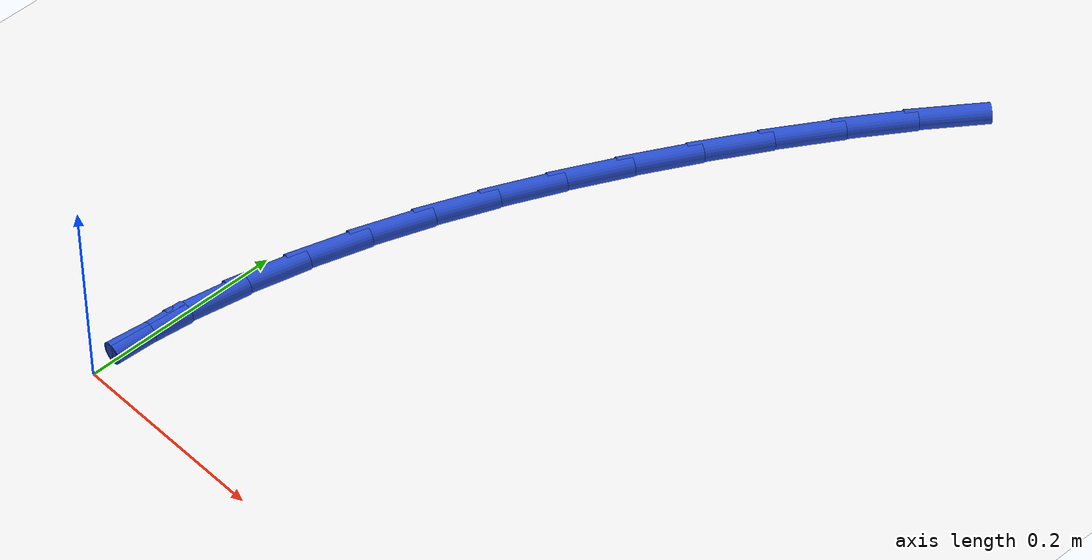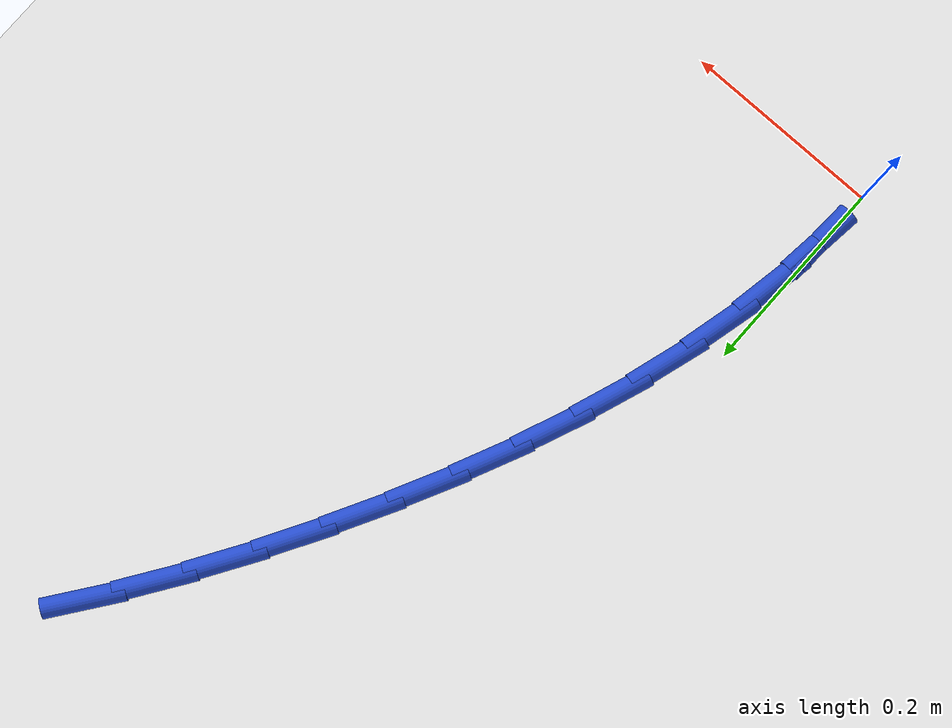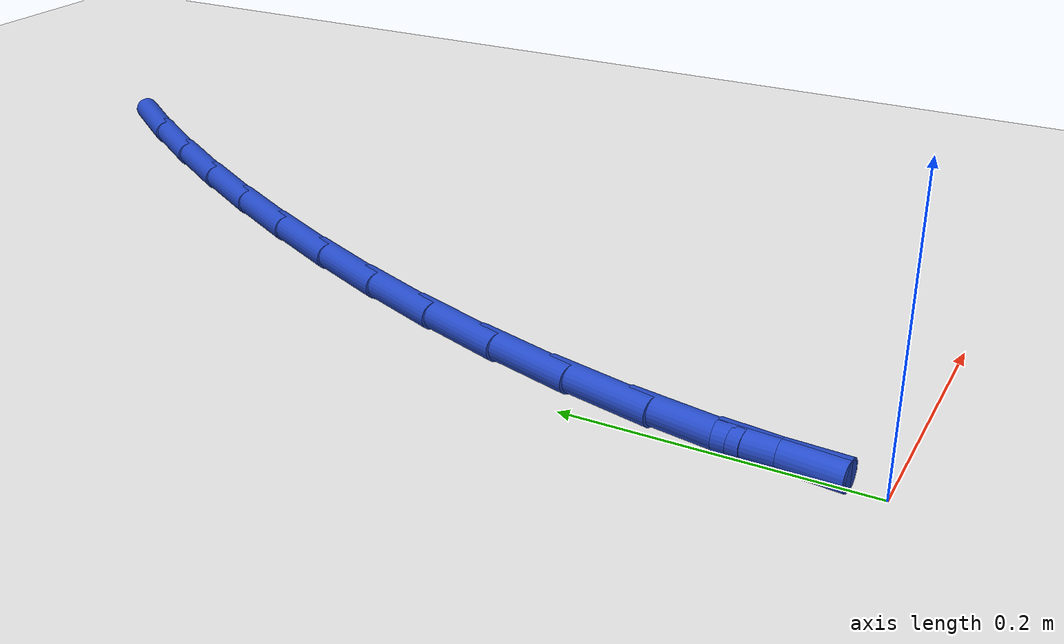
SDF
<sdf version="1.6">
 <world name="default">
  <model name="ground_plane">
   <static>1</static>
   <link name="link">
    <collision name="collision">
     <geometry><plane><normal>0 0 1</normal><size>100 100</size></plane></geometry>
     <surface><friction><ode><mu>100</mu><mu2>50</mu2></ode></friction></surface>
    </collision>
    <visual name="visual">
     <cast_shadows>0</cast_shadows>
     <geometry><plane><normal>0 0 1</normal><size>100 100</size></plane></geometry>
     <material>
      <script><uri>file://media/materials/scripts/gazebo.material</uri><name>Gazebo/WhiteGlow</name></script>
     </material>
    </visual>
   </link>
  </model>
  <model name="line">
   <link name="link_1">
    <pose>0.0030212561730671938 0.0612209820803084 0.01 0 1.57 1.4534583963376244</pose>
    <collision name="collision">
     <geometry><cylinder><radius>0.01</radius><length>0.08</length></cylinder></geometry>
    </collision>
    <visual name="visual">
     <material>
      <script><name>Gazebo/Blue</name><uri>file://media/materials/scripts/gazebo.material</uri></script>
     </material>
     <geometry><cylinder><radius>0.01</radius><length>0.08</length></cylinder></geometry>
    </visual>
   </link>
   <link name="link_2">
    <pose>0.010161614441972614 0.12179438904774967 0.01 0 1.57 1.3891064912505708</pose>
    <collision name="collision">
     <geometry><cylinder><radius>0.01</radius><length>0.08</length></cylinder></geometry>
    </collision>
    <visual name="visual">
     <material>
      <script><name>Gazebo/Blue</name><uri>file://media/materials/scripts/gazebo.material</uri></script>
     </material>
     <geometry><cylinder><radius>0.01</radius><length>0.08</length></cylinder></geometry>
    </visual>
   </link>
   <link name="link_3">
    <pose>0.02118711893856509 0.18180828539772936 0.01 0 1.57 1.3291227035821214</pose>
    <collision name="collision">
     <geometry><cylinder><radius>0.01</radius><length>0.08</length></cylinder></geometry>
    </collision>
    <visual name="visual">
     <material>
      <script><name>Gazebo/Blue</name><uri>file://media/materials/scripts/gazebo.material</uri></script>
     </material>
     <geometry><cylinder><radius>0.01</radius><length>0.08</length></cylinder></geometry>
    </visual>
   </link>
   <link name="link_4">
    <pose>0.03586381379469351 0.2413507356256533 0.01 0 1.57 1.2739792566401589</pose>
    <collision name="collision">
     <geometry><cylinder><radius>0.01</radius><length>0.08</length></cylinder></geometry>
    </collision>
    <visual name="visual">
     <material>
      <script><name>Gazebo/Blue</name><uri>file://media/materials/scripts/gazebo.material</uri></script>
     </material>
     <geometry><cylinder><radius>0.01</radius><length>0.08</length></cylinder></geometry>
    </visual>
   </link>
   <link name="link_5">
    <pose>0.053957743142206784 0.30050980422692725 0.01 0 1.57 1.223944101672395</pose>
    <collision name="collision">
     <geometry><cylinder><radius>0.01</radius><length>0.08</length></cylinder></geometry>
    </collision>
    <visual name="visual">
     <material>
      <script><name>Gazebo/Blue</name><uri>file://media/materials/scripts/gazebo.material</uri></script>
     </material>
     <geometry><cylinder><radius>0.01</radius><length>0.08</length></cylinder></geometry>
    </visual>
   </link>
   <link name="link_6">
    <pose>0.07523495111295371 0.35937355569695695 0.01 0 1.57 1.1791131878673837</pose>
    <collision name="collision">
     <geometry><cylinder><radius>0.01</radius><length>0.08</length></cylinder></geometry>
    </collision>
    <visual name="visual">
     <material>
      <script><name>Gazebo/Blue</name><uri>file://media/materials/scripts/gazebo.material</uri></script>
     </material>
     <geometry><cylinder><radius>0.01</radius><length>0.08</length></cylinder></geometry>
    </visual>
   </link>
   <link name="link_7">
    <pose>0.09946148183878323 0.4180300545311478 0.01 0 1.57 1.1394498520822096</pose>
    <collision name="collision">
     <geometry><cylinder><radius>0.01</radius><length>0.08</length></cylinder></geometry>
    </collision>
    <visual name="visual">
     <material>
      <script><name>Gazebo/Blue</name><uri>file://media/materials/scripts/gazebo.material</uri></script>
     </material>
     <geometry><cylinder><radius>0.01</radius><length>0.08</length></cylinder></geometry>
    </visual>
   </link>
   <link name="link_8">
    <pose>0.1264033794515442 0.47656736522490584 0.01 0 1.57 1.1048239456161981</pose>
    <collision name="collision">
     <geometry><cylinder><radius>0.01</radius><length>0.08</length></cylinder></geometry>
    </collision>
    <visual name="visual">
     <material>
      <script><name>Gazebo/Blue</name><uri>file://media/materials/scripts/gazebo.material</uri></script>
     </material>
     <geometry><cylinder><radius>0.01</radius><length>0.08</length></cylinder></geometry>
    </visual>
   </link>
   <link name="link_9">
    <pose>0.15582668808308553 0.5350735522736367 0.01 0 1.57 1.0742936392484428</pose>
    <collision name="collision">
     <geometry><cylinder><radius>0.01</radius><length>0.08</length></cylinder></geometry>
    </collision>
    <visual name="visual">
     <material>
      <script><name>Gazebo/Blue</name><uri>file://media/materials/scripts/gazebo.material</uri></script>
     </material>
     <geometry><cylinder><radius>0.01</radius><length>0.08</length></cylinder></geometry>
    </visual>
   </link>
   <link name="link_10">
    <pose>0.1875189180293624 0.5935711186627688 0.01 0 1.57 1.0435537715377112</pose>
    <collision name="collision">
     <geometry><cylinder><radius>0.01</radius><length>0.08</length></cylinder></geometry>
    </collision>
    <visual name="visual">
     <material>
      <script><name>Gazebo/Blue</name><uri>file://media/materials/scripts/gazebo.material</uri></script>
     </material>
     <geometry><cylinder><radius>0.01</radius><length>0.08</length></cylinder></geometry>
    </visual>
   </link>
   <link name="link_11">
    <pose>0.22138197380038205 0.6517331869589106 0.01 0 1.57 1.0108337555218088</pose>
    <collision name="collision">
     <geometry><cylinder><radius>0.01</radius><length>0.08</length></cylinder></geometry>
    </collision>
    <visual name="visual">
     <material>
      <script><name>Gazebo/Blue</name><uri>file://media/materials/scripts/gazebo.material</uri></script>
     </material>
     <geometry><cylinder><radius>0.01</radius><length>0.08</length></cylinder></geometry>
    </visual>
   </link>
   <link name="link_12">
    <pose>0.2573557134430708 0.7091169628290761 0.01 0 1.57 0.9756468791644011</pose>
    <collision name="collision">
     <geometry><cylinder><radius>0.01</radius><length>0.08</length></cylinder></geometry>
    </collision>
    <visual name="visual">
     <material>
      <script><name>Gazebo/Blue</name><uri>file://media/materials/scripts/gazebo.material</uri></script>
     </material>
     <geometry><cylinder><radius>0.01</radius><length>0.08</length></cylinder></geometry>
    </visual>
   </link>
   <link name="link_13">
    <pose>0.29538001994717594 0.7652795757604359 0.01 0 1.57 0.9374614970926345</pose>
    <collision name="collision">
     <geometry><cylinder><radius>0.01</radius><length>0.08</length></cylinder></geometry>
    </collision>
    <visual name="visual">
     <material>
      <script><name>Gazebo/Blue</name><uri>file://media/materials/scripts/gazebo.material</uri></script>
     </material>
     <geometry><cylinder><radius>0.01</radius><length>0.08</length></cylinder></geometry>
    </visual>
   </link>
   <link name="link_111">
    <pose>0.0030778752867938117 0.06114009927564136 0.01 0 1.57 1.5204974356806629</pose>
    <collision name="collision">
     <geometry><cylinder><radius>0.01</radius><length>0.08</length></cylinder></geometry>
    </collision>
    <visual name="visual">
     <material>
      <script><name>Gazebo/Blue</name><uri>file://media/materials/scripts/gazebo.material</uri></script>
     </material>
     <geometry><cylinder><radius>0.01</radius><length>0.08</length></cylinder></geometry>
    </visual>
   </link>
  </model>
 </world>
</sdf>
